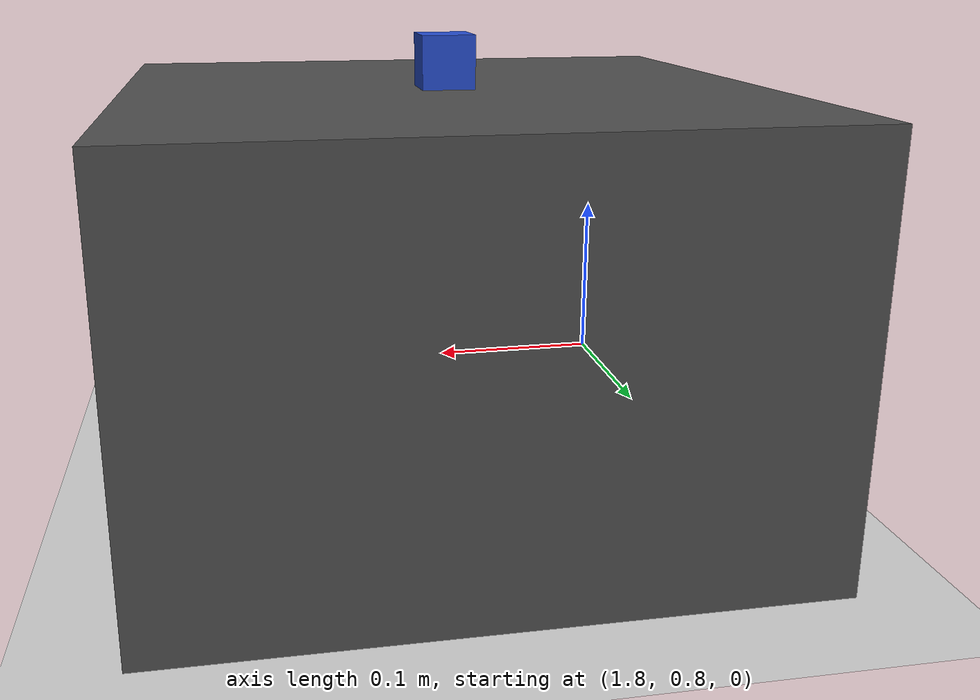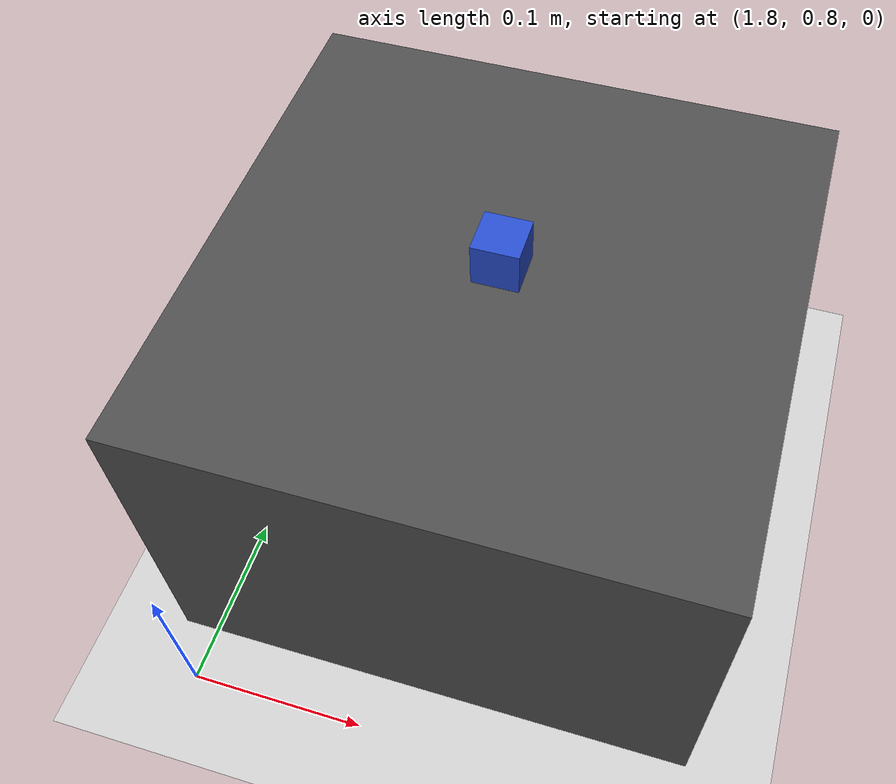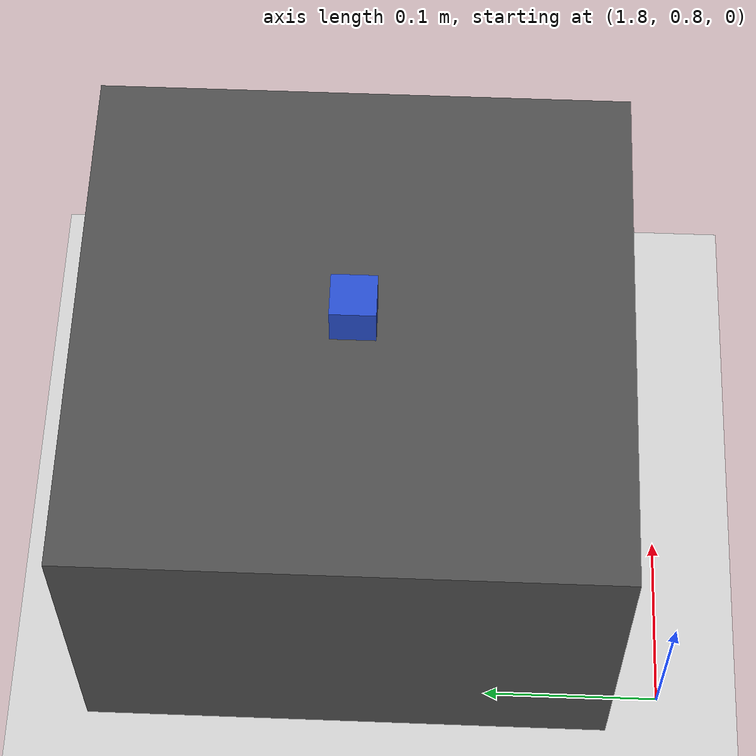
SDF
<?xml version="1.0" ?>
<sdf version="1.6">
  <world name="default">
    <include>
      <uri>model://sun</uri>
    </include>
    <include>
      <uri>model://ground_plane</uri>
    </include>

    <!-- 静态工作台：0.30 x 0.30 x 0.20 m，中心 z=0.10 → 顶面 z=0.20，与 XTDrone grasping 比例一致 -->
    <model name="grasp_table">
      <static>true</static>
      <pose>1.93 0.98 0.10 0 0 0</pose>
      <link name="table_link">
        <inertial>
          <mass>5.0</mass>
          <inertia>
            <ixx>0.05</ixx>
            <ixy>0</ixy>
            <ixz>0</ixz>
            <iyy>0.05</iyy>
            <iyz>0</iyz>
            <izz>0.05</izz>
          </inertia>
        </inertial>
        <collision name="collision">
          <geometry>
            <box>
              <size>0.30 0.30 0.20</size>
            </box>
          </geometry>
          <surface>
            <contact>
              <ode>
                <kp>1e5</kp>
                <kd>1</kd>
              </ode>
            </contact>
            <friction>
              <ode>
                <mu>0.6</mu>
                <mu2>0.6</mu2>
              </ode>
            </friction>
          </surface>
        </collision>
        <visual name="visual">
          <geometry>
            <box>
              <size>0.30 0.30 0.20</size>
            </box>
          </geometry>
          <material>
            <script>
              <name>Gazebo/DarkGrey</name>
              <uri>file://media/materials/scripts/gazebo.material</uri>
            </script>
          </material>
        </visual>
        <!-- 臂↔台面碰撞：offboard_grasp 订阅 /grasp_table_contact_bumper，顶台面后收臂中止抓取 -->
        <sensor name="table_contact_bumper" type="contact">
          <always_on>true</always_on>
          <update_rate>30</update_rate>
          <visualize>false</visualize>
          <contact>
            <collision>collision</collision>
          </contact>
          <plugin name="gazebo_ros_table_bumper" filename="libgazebo_ros_bumper.so">
            <alwaysOn>true</alwaysOn>
            <updateRate>30</updateRate>
            <bumperTopicName>grasp_table_contact_bumper</bumperTopicName>
            <frameName>table_link</frameName>
          </plugin>
        </sensor>
      </link>
    </model>

    <!-- 可抓取目标：2.5cm 边长立方体；质心 z = 台面 0.20 + 半高 0.0125 = 0.2125 -->
    <model name="grasp_target_cube">
      <pose>1.93 0.98 0.2125 0 0 0</pose>
      <link name="cube_link">
        <inertial>
          <mass>0.05</mass>
          <inertia>
            <ixx>5.21e-06</ixx>
            <ixy>0</ixy>
            <ixz>0</ixz>
            <iyy>5.21e-06</iyy>
            <iyz>0</iyz>
            <izz>5.21e-06</izz>
          </inertia>
        </inertial>
        <collision name="collision">
          <geometry>
            <box>
              <size>0.025 0.025 0.025</size>
            </box>
          </geometry>
          <surface>
            <!-- 软化接触：减轻伪吸附 set_model_state 与穿透修正对冲导致的抖动/Ogre 数值崩溃 -->
            <contact>
              <!-- 与 URDF 中 gripper_link 侧 kp/kd 同量级，避免一侧极硬一侧极软 -->
              <ode>
                <kp>5500</kp>
                <kd>48</kd>
                <max_vel>2.5</max_vel>
                <min_depth>0.001</min_depth>
              </ode>
            </contact>
            <friction>
              <ode>
                <mu>0.95</mu>
                <mu2>0.95</mu2>
              </ode>
            </friction>
          </surface>
        </collision>
        <visual name="visual">
          <geometry>
            <box>
              <size>0.025 0.025 0.025</size>
            </box>
          </geometry>
          <material>
            <script>
              <name>Gazebo/Blue</name>
              <uri>file://media/materials/scripts/gazebo.material</uri>
            </script>
          </material>
        </visual>
        <sensor name="cube_contact_bumper" type="contact">
          <always_on>true</always_on>
          <update_rate>30</update_rate>
          <visualize>false</visualize>
          <contact>
            <collision>collision</collision>
          </contact>
          <plugin name="gazebo_ros_cube_bumper" filename="libgazebo_ros_bumper.so">
            <alwaysOn>true</alwaysOn>
            <updateRate>30</updateRate>
            <bumperTopicName>grasp_cube_contact_bumper</bumperTopicName>
            <frameName>cube_link</frameName>
          </plugin>
        </sensor>
      </link>
    </model>
    <physics name="default_physics" type="ode">
      <max_step_size>0.005</max_step_size>
      <real_time_update_rate>200</real_time_update_rate>
      <ode>
        <solver>
          <type>quick</type>
          <iters>20</iters>
          <sor>1.3</sor>
        </solver>
        <constraints>
          <!-- 再软化：大 cfm、低修正速度，减轻接触与力矩环“咬死” -->
          <cfm>0.001</cfm>
          <erp>0.2</erp>
          <contact_max_correcting_vel>80</contact_max_correcting_vel>
          <contact_surface_layer>0.002</contact_surface_layer>
        </constraints>
      </ode>
      <magnetic_field>6.0e-6 2.3e-5 -4.2e-5</magnetic_field>
    </physics>
  </world>
</sdf>
